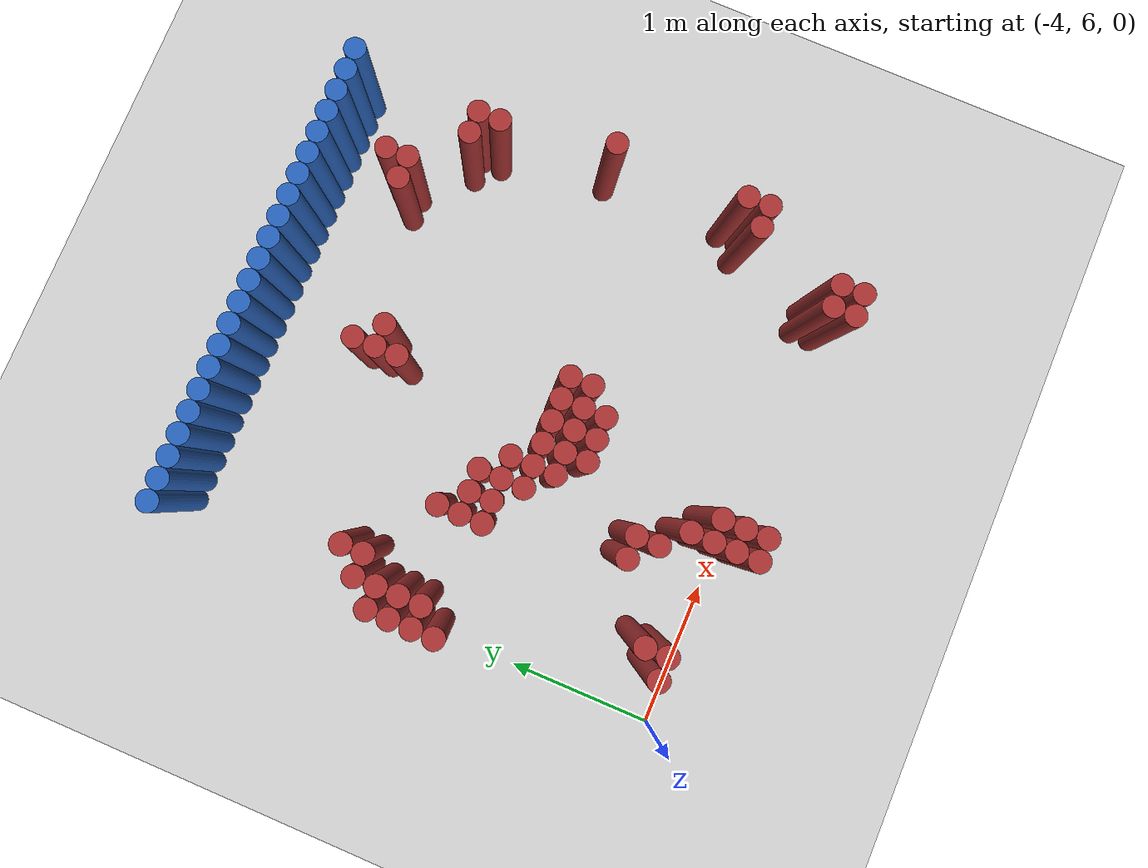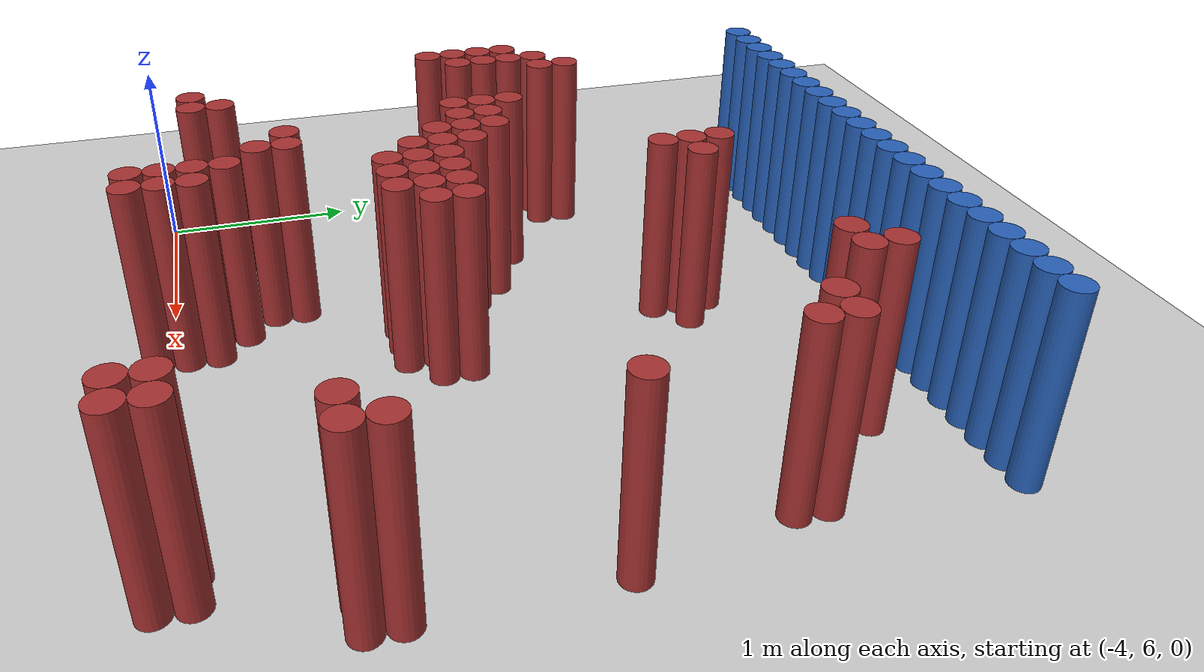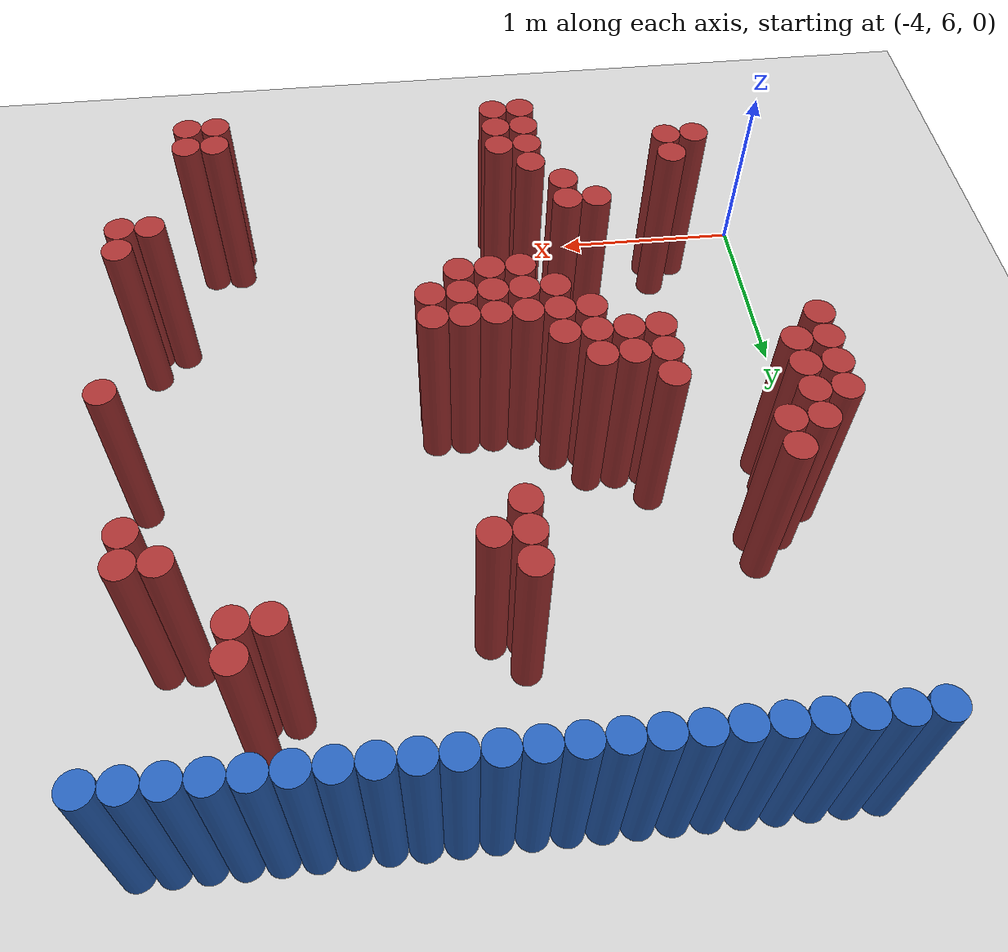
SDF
<sdf version="1.6">
 <world name="barn_world">
  <model name="ground_plane">
   <static>1</static>
   <link name="link">
    <collision name="collision">
     <geometry><plane><normal>0 0 1</normal><size>100 100</size></plane></geometry>
    </collision>
    <visual name="visual">
     <geometry><plane><normal>0 0 1</normal><size>100 100</size></plane></geometry>
     <material>
      <script><uri>file://media/materials/scripts/gazebo.material</uri><name>Gazebo/Grey</name></script>
     </material>
    </visual>
   </link>
  </model>
  <model name="unit_cylinder_196">
   <static>1</static>
   <pose>-3.9000 7.5750 0.5 0 0 0</pose>
   <link name="link">
    <collision name="collision">
     <geometry><cylinder><radius>0.075</radius><length>1</length></cylinder></geometry>
    </collision>
    <visual name="visual">
     <geometry><cylinder><radius>0.075</radius><length>1</length></cylinder></geometry>
     <material><ambient>0.648 0.192 0.192 1</ambient><diffuse>0.648 0.192 0.192 1</diffuse></material>
    </visual>
   </link>
  </model>
  <model name="unit_cylinder_197">
   <static>1</static>
   <pose>-3.9000 7.7250 0.5 0 0 0</pose>
   <link name="link">
    <collision name="collision">
     <geometry><cylinder><radius>0.075</radius><length>1</length></cylinder></geometry>
    </collision>
    <visual name="visual">
     <geometry><cylinder><radius>0.075</radius><length>1</length></cylinder></geometry>
     <material><ambient>0.648 0.192 0.192 1</ambient><diffuse>0.648 0.192 0.192 1</diffuse></material>
    </visual>
   </link>
  </model>
  <model name="unit_cylinder_198">
   <static>1</static>
   <pose>-3.9000 7.8750 0.5 0 0 0</pose>
   <link name="link">
    <collision name="collision">
     <geometry><cylinder><radius>0.075</radius><length>1</length></cylinder></geometry>
    </collision>
    <visual name="visual">
     <geometry><cylinder><radius>0.075</radius><length>1</length></cylinder></geometry>
     <material><ambient>0.648 0.192 0.192 1</ambient><diffuse>0.648 0.192 0.192 1</diffuse></material>
    </visual>
   </link>
  </model>
  <model name="unit_cylinder_199">
   <static>1</static>
   <pose>-3.9000 8.0250 0.5 0 0 0</pose>
   <link name="link">
    <collision name="collision">
     <geometry><cylinder><radius>0.075</radius><length>1</length></cylinder></geometry>
    </collision>
    <visual name="visual">
     <geometry><cylinder><radius>0.075</radius><length>1</length></cylinder></geometry>
     <material><ambient>0.648 0.192 0.192 1</ambient><diffuse>0.648 0.192 0.192 1</diffuse></material>
    </visual>
   </link>
  </model>
  <model name="unit_cylinder_200">
   <static>1</static>
   <pose>-3.7500 7.7250 0.5 0 0 0</pose>
   <link name="link">
    <collision name="collision">
     <geometry><cylinder><radius>0.075</radius><length>1</length></cylinder></geometry>
    </collision>
    <visual name="visual">
     <geometry><cylinder><radius>0.075</radius><length>1</length></cylinder></geometry>
     <material><ambient>0.648 0.192 0.192 1</ambient><diffuse>0.648 0.192 0.192 1</diffuse></material>
    </visual>
   </link>
  </model>
  <model name="unit_cylinder_201">
   <static>1</static>
   <pose>-3.7500 7.8750 0.5 0 0 0</pose>
   <link name="link">
    <collision name="collision">
     <geometry><cylinder><radius>0.075</radius><length>1</length></cylinder></geometry>
    </collision>
    <visual name="visual">
     <geometry><cylinder><radius>0.075</radius><length>1</length></cylinder></geometry>
     <material><ambient>0.648 0.192 0.192 1</ambient><diffuse>0.648 0.192 0.192 1</diffuse></material>
    </visual>
   </link>
  </model>
  <model name="unit_cylinder_202">
   <static>1</static>
   <pose>-3.7500 8.0250 0.5 0 0 0</pose>
   <link name="link">
    <collision name="collision">
     <geometry><cylinder><radius>0.075</radius><length>1</length></cylinder></geometry>
    </collision>
    <visual name="visual">
     <geometry><cylinder><radius>0.075</radius><length>1</length></cylinder></geometry>
     <material><ambient>0.648 0.192 0.192 1</ambient><diffuse>0.648 0.192 0.192 1</diffuse></material>
    </visual>
   </link>
  </model>
  <model name="unit_cylinder_203">
   <static>1</static>
   <pose>-3.7500 8.1750 0.5 0 0 0</pose>
   <link name="link">
    <collision name="collision">
     <geometry><cylinder><radius>0.075</radius><length>1</length></cylinder></geometry>
    </collision>
    <visual name="visual">
     <geometry><cylinder><radius>0.075</radius><length>1</length></cylinder></geometry>
     <material><ambient>0.648 0.192 0.192 1</ambient><diffuse>0.648 0.192 0.192 1</diffuse></material>
    </visual>
   </link>
  </model>
  <model name="unit_cylinder_204">
   <static>1</static>
   <pose>-3.6000 6.2250 0.5 0 0 0</pose>
   <link name="link">
    <collision name="collision">
     <geometry><cylinder><radius>0.075</radius><length>1</length></cylinder></geometry>
    </collision>
    <visual name="visual">
     <geometry><cylinder><radius>0.075</radius><length>1</length></cylinder></geometry>
     <material><ambient>0.648 0.192 0.192 1</ambient><diffuse>0.648 0.192 0.192 1</diffuse></material>
    </visual>
   </link>
  </model>
  <model name="unit_cylinder_205">
   <static>1</static>
   <pose>-3.6000 8.1750 0.5 0 0 0</pose>
   <link name="link">
    <collision name="collision">
     <geometry><cylinder><radius>0.075</radius><length>1</length></cylinder></geometry>
    </collision>
    <visual name="visual">
     <geometry><cylinder><radius>0.075</radius><length>1</length></cylinder></geometry>
     <material><ambient>0.648 0.192 0.192 1</ambient><diffuse>0.648 0.192 0.192 1</diffuse></material>
    </visual>
   </link>
  </model>
  <model name="unit_cylinder_206">
   <static>1</static>
   <pose>-3.6000 8.3250 0.5 0 0 0</pose>
   <link name="link">
    <collision name="collision">
     <geometry><cylinder><radius>0.075</radius><length>1</length></cylinder></geometry>
    </collision>
    <visual name="visual">
     <geometry><cylinder><radius>0.075</radius><length>1</length></cylinder></geometry>
     <material><ambient>0.648 0.192 0.192 1</ambient><diffuse>0.648 0.192 0.192 1</diffuse></material>
    </visual>
   </link>
  </model>
  <model name="unit_cylinder_207">
   <static>1</static>
   <pose>-3.4500 6.2250 0.5 0 0 0</pose>
   <link name="link">
    <collision name="collision">
     <geometry><cylinder><radius>0.075</radius><length>1</length></cylinder></geometry>
    </collision>
    <visual name="visual">
     <geometry><cylinder><radius>0.075</radius><length>1</length></cylinder></geometry>
     <material><ambient>0.648 0.192 0.192 1</ambient><diffuse>0.648 0.192 0.192 1</diffuse></material>
    </visual>
   </link>
  </model>
  <model name="unit_cylinder_208">
   <static>1</static>
   <pose>-3.4500 6.3750 0.5 0 0 0</pose>
   <link name="link">
    <collision name="collision">
     <geometry><cylinder><radius>0.075</radius><length>1</length></cylinder></geometry>
    </collision>
    <visual name="visual">
     <geometry><cylinder><radius>0.075</radius><length>1</length></cylinder></geometry>
     <material><ambient>0.648 0.192 0.192 1</ambient><diffuse>0.648 0.192 0.192 1</diffuse></material>
    </visual>
   </link>
  </model>
  <model name="unit_cylinder_209">
   <static>1</static>
   <pose>-3.1500 7.5750 0.5 0 0 0</pose>
   <link name="link">
    <collision name="collision">
     <geometry><cylinder><radius>0.075</radius><length>1</length></cylinder></geometry>
    </collision>
    <visual name="visual">
     <geometry><cylinder><radius>0.075</radius><length>1</length></cylinder></geometry>
     <material><ambient>0.648 0.192 0.192 1</ambient><diffuse>0.648 0.192 0.192 1</diffuse></material>
    </visual>
   </link>
  </model>
  <model name="unit_cylinder_210">
   <static>1</static>
   <pose>-3.1500 7.7250 0.5 0 0 0</pose>
   <link name="link">
    <collision name="collision">
     <geometry><cylinder><radius>0.075</radius><length>1</length></cylinder></geometry>
    </collision>
    <visual name="visual">
     <geometry><cylinder><radius>0.075</radius><length>1</length></cylinder></geometry>
     <material><ambient>0.648 0.192 0.192 1</ambient><diffuse>0.648 0.192 0.192 1</diffuse></material>
    </visual>
   </link>
  </model>
  <model name="unit_cylinder_211">
   <static>1</static>
   <pose>-3.1500 7.8750 0.5 0 0 0</pose>
   <link name="link">
    <collision name="collision">
     <geometry><cylinder><radius>0.075</radius><length>1</length></cylinder></geometry>
    </collision>
    <visual name="visual">
     <geometry><cylinder><radius>0.075</radius><length>1</length></cylinder></geometry>
     <material><ambient>0.648 0.192 0.192 1</ambient><diffuse>0.648 0.192 0.192 1</diffuse></material>
    </visual>
   </link>
  </model>
  <model name="unit_cylinder_213">
   <static>1</static>
   <pose>-3.0000 6.6750 0.5 0 0 0</pose>
   <link name="link">
    <collision name="collision">
     <geometry><cylinder><radius>0.075</radius><length>1</length></cylinder></geometry>
    </collision>
    <visual name="visual">
     <geometry><cylinder><radius>0.075</radius><length>1</length></cylinder></geometry>
     <material><ambient>0.648 0.192 0.192 1</ambient><diffuse>0.648 0.192 0.192 1</diffuse></material>
    </visual>
   </link>
  </model>
  <model name="unit_cylinder_214">
   <static>1</static>
   <pose>-3.0000 7.5750 0.5 0 0 0</pose>
   <link name="link">
    <collision name="collision">
     <geometry><cylinder><radius>0.075</radius><length>1</length></cylinder></geometry>
    </collision>
    <visual name="visual">
     <geometry><cylinder><radius>0.075</radius><length>1</length></cylinder></geometry>
     <material><ambient>0.648 0.192 0.192 1</ambient><diffuse>0.648 0.192 0.192 1</diffuse></material>
    </visual>
   </link>
  </model>
  <model name="unit_cylinder_215">
   <static>1</static>
   <pose>-3.0000 7.7250 0.5 0 0 0</pose>
   <link name="link">
    <collision name="collision">
     <geometry><cylinder><radius>0.075</radius><length>1</length></cylinder></geometry>
    </collision>
    <visual name="visual">
     <geometry><cylinder><radius>0.075</radius><length>1</length></cylinder></geometry>
     <material><ambient>0.648 0.192 0.192 1</ambient><diffuse>0.648 0.192 0.192 1</diffuse></material>
    </visual>
   </link>
  </model>
  <model name="unit_cylinder_218">
   <static>1</static>
   <pose>-2.8500 6.5250 0.5 0 0 0</pose>
   <link name="link">
    <collision name="collision">
     <geometry><cylinder><radius>0.075</radius><length>1</length></cylinder></geometry>
    </collision>
    <visual name="visual">
     <geometry><cylinder><radius>0.075</radius><length>1</length></cylinder></geometry>
     <material><ambient>0.648 0.192 0.192 1</ambient><diffuse>0.648 0.192 0.192 1</diffuse></material>
    </visual>
   </link>
  </model>
  <model name="unit_cylinder_219">
   <static>1</static>
   <pose>-2.8500 6.6750 0.5 0 0 0</pose>
   <link name="link">
    <collision name="collision">
     <geometry><cylinder><radius>0.075</radius><length>1</length></cylinder></geometry>
    </collision>
    <visual name="visual">
     <geometry><cylinder><radius>0.075</radius><length>1</length></cylinder></geometry>
     <material><ambient>0.648 0.192 0.192 1</ambient><diffuse>0.648 0.192 0.192 1</diffuse></material>
    </visual>
   </link>
  </model>
  <model name="unit_cylinder_220">
   <static>1</static>
   <pose>-2.8500 7.4250 0.5 0 0 0</pose>
   <link name="link">
    <collision name="collision">
     <geometry><cylinder><radius>0.075</radius><length>1</length></cylinder></geometry>
    </collision>
    <visual name="visual">
     <geometry><cylinder><radius>0.075</radius><length>1</length></cylinder></geometry>
     <material><ambient>0.648 0.192 0.192 1</ambient><diffuse>0.648 0.192 0.192 1</diffuse></material>
    </visual>
   </link>
  </model>
  <model name="unit_cylinder_221">
   <static>1</static>
   <pose>-2.8500 7.5750 0.5 0 0 0</pose>
   <link name="link">
    <collision name="collision">
     <geometry><cylinder><radius>0.075</radius><length>1</length></cylinder></geometry>
    </collision>
    <visual name="visual">
     <geometry><cylinder><radius>0.075</radius><length>1</length></cylinder></geometry>
     <material><ambient>0.648 0.192 0.192 1</ambient><diffuse>0.648 0.192 0.192 1</diffuse></material>
    </visual>
   </link>
  </model>
  <model name="unit_cylinder_222">
   <static>1</static>
   <pose>-2.8500 7.7250 0.5 0 0 0</pose>
   <link name="link">
    <collision name="collision">
     <geometry><cylinder><radius>0.075</radius><length>1</length></cylinder></geometry>
    </collision>
    <visual name="visual">
     <geometry><cylinder><radius>0.075</radius><length>1</length></cylinder></geometry>
     <material><ambient>0.648 0.192 0.192 1</ambient><diffuse>0.648 0.192 0.192 1</diffuse></material>
    </visual>
   </link>
  </model>
  <model name="unit_cylinder_224">
   <static>1</static>
   <pose>-2.7000 5.9250 0.5 0 0 0</pose>
   <link name="link">
    <collision name="collision">
     <geometry><cylinder><radius>0.075</radius><length>1</length></cylinder></geometry>
    </collision>
    <visual name="visual">
     <geometry><cylinder><radius>0.075</radius><length>1</length></cylinder></geometry>
     <material><ambient>0.648 0.192 0.192 1</ambient><diffuse>0.648 0.192 0.192 1</diffuse></material>
    </visual>
   </link>
  </model>
  <model name="unit_cylinder_225">
   <static>1</static>
   <pose>-2.7000 6.0750 0.5 0 0 0</pose>
   <link name="link">
    <collision name="collision">
     <geometry><cylinder><radius>0.075</radius><length>1</length></cylinder></geometry>
    </collision>
    <visual name="visual">
     <geometry><cylinder><radius>0.075</radius><length>1</length></cylinder></geometry>
     <material><ambient>0.648 0.192 0.192 1</ambient><diffuse>0.648 0.192 0.192 1</diffuse></material>
    </visual>
   </link>
  </model>
  <model name="unit_cylinder_226">
   <static>1</static>
   <pose>-2.7000 6.2250 0.5 0 0 0</pose>
   <link name="link">
    <collision name="collision">
     <geometry><cylinder><radius>0.075</radius><length>1</length></cylinder></geometry>
    </collision>
    <visual name="visual">
     <geometry><cylinder><radius>0.075</radius><length>1</length></cylinder></geometry>
     <material><ambient>0.648 0.192 0.192 1</ambient><diffuse>0.648 0.192 0.192 1</diffuse></material>
    </visual>
   </link>
  </model>
  <model name="unit_cylinder_227">
   <static>1</static>
   <pose>-2.7000 6.3750 0.5 0 0 0</pose>
   <link name="link">
    <collision name="collision">
     <geometry><cylinder><radius>0.075</radius><length>1</length></cylinder></geometry>
    </collision>
    <visual name="visual">
     <geometry><cylinder><radius>0.075</radius><length>1</length></cylinder></geometry>
     <material><ambient>0.648 0.192 0.192 1</ambient><diffuse>0.648 0.192 0.192 1</diffuse></material>
    </visual>
   </link>
  </model>
  <model name="unit_cylinder_228">
   <static>1</static>
   <pose>-2.7000 7.2750 0.5 0 0 0</pose>
   <link name="link">
    <collision name="collision">
     <geometry><cylinder><radius>0.075</radius><length>1</length></cylinder></geometry>
    </collision>
    <visual name="visual">
     <geometry><cylinder><radius>0.075</radius><length>1</length></cylinder></geometry>
     <material><ambient>0.648 0.192 0.192 1</ambient><diffuse>0.648 0.192 0.192 1</diffuse></material>
    </visual>
   </link>
  </model>
  <model name="unit_cylinder_229">
   <static>1</static>
   <pose>-2.7000 7.4250 0.5 0 0 0</pose>
   <link name="link">
    <collision name="collision">
     <geometry><cylinder><radius>0.075</radius><length>1</length></cylinder></geometry>
    </collision>
    <visual name="visual">
     <geometry><cylinder><radius>0.075</radius><length>1</length></cylinder></geometry>
     <material><ambient>0.648 0.192 0.192 1</ambient><diffuse>0.648 0.192 0.192 1</diffuse></material>
    </visual>
   </link>
  </model>
  <model name="unit_cylinder_230">
   <static>1</static>
   <pose>-2.7000 7.5750 0.5 0 0 0</pose>
   <link name="link">
    <collision name="collision">
     <geometry><cylinder><radius>0.075</radius><length>1</length></cylinder></geometry>
    </collision>
    <visual name="visual">
     <geometry><cylinder><radius>0.075</radius><length>1</length></cylinder></geometry>
     <material><ambient>0.648 0.192 0.192 1</ambient><diffuse>0.648 0.192 0.192 1</diffuse></material>
    </visual>
   </link>
  </model>
  <model name="unit_cylinder_231">
   <static>1</static>
   <pose>-2.5500 5.9250 0.5 0 0 0</pose>
   <link name="link">
    <collision name="collision">
     <geometry><cylinder><radius>0.075</radius><length>1</length></cylinder></geometry>
    </collision>
    <visual name="visual">
     <geometry><cylinder><radius>0.075</radius><length>1</length></cylinder></geometry>
     <material><ambient>0.648 0.192 0.192 1</ambient><diffuse>0.648 0.192 0.192 1</diffuse></material>
    </visual>
   </link>
  </model>
  <model name="unit_cylinder_232">
   <static>1</static>
   <pose>-2.5500 6.0750 0.5 0 0 0</pose>
   <link name="link">
    <collision name="collision">
     <geometry><cylinder><radius>0.075</radius><length>1</length></cylinder></geometry>
    </collision>
    <visual name="visual">
     <geometry><cylinder><radius>0.075</radius><length>1</length></cylinder></geometry>
     <material><ambient>0.648 0.192 0.192 1</ambient><diffuse>0.648 0.192 0.192 1</diffuse></material>
    </visual>
   </link>
  </model>
  <model name="unit_cylinder_233">
   <static>1</static>
   <pose>-2.5500 6.2250 0.5 0 0 0</pose>
   <link name="link">
    <collision name="collision">
     <geometry><cylinder><radius>0.075</radius><length>1</length></cylinder></geometry>
    </collision>
    <visual name="visual">
     <geometry><cylinder><radius>0.075</radius><length>1</length></cylinder></geometry>
     <material><ambient>0.648 0.192 0.192 1</ambient><diffuse>0.648 0.192 0.192 1</diffuse></material>
    </visual>
   </link>
  </model>
  <model name="unit_cylinder_234">
   <static>1</static>
   <pose>-2.5500 7.1250 0.5 0 0 0</pose>
   <link name="link">
    <collision name="collision">
     <geometry><cylinder><radius>0.075</radius><length>1</length></cylinder></geometry>
    </collision>
    <visual name="visual">
     <geometry><cylinder><radius>0.075</radius><length>1</length></cylinder></geometry>
     <material><ambient>0.648 0.192 0.192 1</ambient><diffuse>0.648 0.192 0.192 1</diffuse></material>
    </visual>
   </link>
  </model>
  <model name="unit_cylinder_235">
   <static>1</static>
   <pose>-2.5500 7.2750 0.5 0 0 0</pose>
   <link name="link">
    <collision name="collision">
     <geometry><cylinder><radius>0.075</radius><length>1</length></cylinder></geometry>
    </collision>
    <visual name="visual">
     <geometry><cylinder><radius>0.075</radius><length>1</length></cylinder></geometry>
     <material><ambient>0.648 0.192 0.192 1</ambient><diffuse>0.648 0.192 0.192 1</diffuse></material>
    </visual>
   </link>
  </model>
  <model name="unit_cylinder_236">
   <static>1</static>
   <pose>-2.5500 7.4250 0.5 0 0 0</pose>
   <link name="link">
    <collision name="collision">
     <geometry><cylinder><radius>0.075</radius><length>1</length></cylinder></geometry>
    </collision>
    <visual name="visual">
     <geometry><cylinder><radius>0.075</radius><length>1</length></cylinder></geometry>
     <material><ambient>0.648 0.192 0.192 1</ambient><diffuse>0.648 0.192 0.192 1</diffuse></material>
    </visual>
   </link>
  </model>
  <model name="unit_cylinder_237">
   <static>1</static>
   <pose>-2.4000 7.1250 0.5 0 0 0</pose>
   <link name="link">
    <collision name="collision">
     <geometry><cylinder><radius>0.075</radius><length>1</length></cylinder></geometry>
    </collision>
    <visual name="visual">
     <geometry><cylinder><radius>0.075</radius><length>1</length></cylinder></geometry>
     <material><ambient>0.648 0.192 0.192 1</ambient><diffuse>0.648 0.192 0.192 1</diffuse></material>
    </visual>
   </link>
  </model>
  <model name="unit_cylinder_238">
   <static>1</static>
   <pose>-2.4000 7.2750 0.5 0 0 0</pose>
   <link name="link">
    <collision name="collision">
     <geometry><cylinder><radius>0.075</radius><length>1</length></cylinder></geometry>
    </collision>
    <visual name="visual">
     <geometry><cylinder><radius>0.075</radius><length>1</length></cylinder></geometry>
     <material><ambient>0.648 0.192 0.192 1</ambient><diffuse>0.648 0.192 0.192 1</diffuse></material>
    </visual>
   </link>
  </model>
  <model name="unit_cylinder_239">
   <static>1</static>
   <pose>-2.4000 7.4250 0.5 0 0 0</pose>
   <link name="link">
    <collision name="collision">
     <geometry><cylinder><radius>0.075</radius><length>1</length></cylinder></geometry>
    </collision>
    <visual name="visual">
     <geometry><cylinder><radius>0.075</radius><length>1</length></cylinder></geometry>
     <material><ambient>0.648 0.192 0.192 1</ambient><diffuse>0.648 0.192 0.192 1</diffuse></material>
    </visual>
   </link>
  </model>
  <model name="unit_cylinder_240">
   <static>1</static>
   <pose>-2.4000 8.4750 0.5 0 0 0</pose>
   <link name="link">
    <collision name="collision">
     <geometry><cylinder><radius>0.075</radius><length>1</length></cylinder></geometry>
    </collision>
    <visual name="visual">
     <geometry><cylinder><radius>0.075</radius><length>1</length></cylinder></geometry>
     <material><ambient>0.648 0.192 0.192 1</ambient><diffuse>0.648 0.192 0.192 1</diffuse></material>
    </visual>
   </link>
  </model>
  <model name="unit_cylinder_241">
   <static>1</static>
   <pose>-2.4000 8.6250 0.5 0 0 0</pose>
   <link name="link">
    <collision name="collision">
     <geometry><cylinder><radius>0.075</radius><length>1</length></cylinder></geometry>
    </collision>
    <visual name="visual">
     <geometry><cylinder><radius>0.075</radius><length>1</length></cylinder></geometry>
     <material><ambient>0.648 0.192 0.192 1</ambient><diffuse>0.648 0.192 0.192 1</diffuse></material>
    </visual>
   </link>
  </model>
  <model name="unit_cylinder_242">
   <static>1</static>
   <pose>-2.4000 8.7750 0.5 0 0 0</pose>
   <link name="link">
    <collision name="collision">
     <geometry><cylinder><radius>0.075</radius><length>1</length></cylinder></geometry>
    </collision>
    <visual name="visual">
     <geometry><cylinder><radius>0.075</radius><length>1</length></cylinder></geometry>
     <material><ambient>0.648 0.192 0.192 1</ambient><diffuse>0.648 0.192 0.192 1</diffuse></material>
    </visual>
   </link>
  </model>
  <model name="unit_cylinder_243">
   <static>1</static>
   <pose>-2.2500 7.1250 0.5 0 0 0</pose>
   <link name="link">
    <collision name="collision">
     <geometry><cylinder><radius>0.075</radius><length>1</length></cylinder></geometry>
    </collision>
    <visual name="visual">
     <geometry><cylinder><radius>0.075</radius><length>1</length></cylinder></geometry>
     <material><ambient>0.648 0.192 0.192 1</ambient><diffuse>0.648 0.192 0.192 1</diffuse></material>
    </visual>
   </link>
  </model>
  <model name="unit_cylinder_244">
   <static>1</static>
   <pose>-2.2500 7.2750 0.5 0 0 0</pose>
   <link name="link">
    <collision name="collision">
     <geometry><cylinder><radius>0.075</radius><length>1</length></cylinder></geometry>
    </collision>
    <visual name="visual">
     <geometry><cylinder><radius>0.075</radius><length>1</length></cylinder></geometry>
     <material><ambient>0.648 0.192 0.192 1</ambient><diffuse>0.648 0.192 0.192 1</diffuse></material>
    </visual>
   </link>
  </model>
  <model name="unit_cylinder_245">
   <static>1</static>
   <pose>-2.2500 7.4250 0.5 0 0 0</pose>
   <link name="link">
    <collision name="collision">
     <geometry><cylinder><radius>0.075</radius><length>1</length></cylinder></geometry>
    </collision>
    <visual name="visual">
     <geometry><cylinder><radius>0.075</radius><length>1</length></cylinder></geometry>
     <material><ambient>0.648 0.192 0.192 1</ambient><diffuse>0.648 0.192 0.192 1</diffuse></material>
    </visual>
   </link>
  </model>
  <model name="unit_cylinder_246">
   <static>1</static>
   <pose>-2.2500 8.6250 0.5 0 0 0</pose>
   <link name="link">
    <collision name="collision">
     <geometry><cylinder><radius>0.075</radius><length>1</length></cylinder></geometry>
    </collision>
    <visual name="visual">
     <geometry><cylinder><radius>0.075</radius><length>1</length></cylinder></geometry>
     <material><ambient>0.648 0.192 0.192 1</ambient><diffuse>0.648 0.192 0.192 1</diffuse></material>
    </visual>
   </link>
  </model>
  <model name="unit_cylinder_247">
   <static>1</static>
   <pose>-2.1000 7.2750 0.5 0 0 0</pose>
   <link name="link">
    <collision name="collision">
     <geometry><cylinder><radius>0.075</radius><length>1</length></cylinder></geometry>
    </collision>
    <visual name="visual">
     <geometry><cylinder><radius>0.075</radius><length>1</length></cylinder></geometry>
     <material><ambient>0.648 0.192 0.192 1</ambient><diffuse>0.648 0.192 0.192 1</diffuse></material>
    </visual>
   </link>
  </model>
  <model name="unit_cylinder_248">
   <static>1</static>
   <pose>-2.1000 7.4250 0.5 0 0 0</pose>
   <link name="link">
    <collision name="collision">
     <geometry><cylinder><radius>0.075</radius><length>1</length></cylinder></geometry>
    </collision>
    <visual name="visual">
     <geometry><cylinder><radius>0.075</radius><length>1</length></cylinder></geometry>
     <material><ambient>0.648 0.192 0.192 1</ambient><diffuse>0.648 0.192 0.192 1</diffuse></material>
    </visual>
   </link>
  </model>
  <model name="unit_cylinder_258">
   <static>1</static>
   <pose>-1.3500 8.9250 0.5 0 0 0</pose>
   <link name="link">
    <collision name="collision">
     <geometry><cylinder><radius>0.075</radius><length>1</length></cylinder></geometry>
    </collision>
    <visual name="visual">
     <geometry><cylinder><radius>0.075</radius><length>1</length></cylinder></geometry>
     <material><ambient>0.648 0.192 0.192 1</ambient><diffuse>0.648 0.192 0.192 1</diffuse></material>
    </visual>
   </link>
  </model>
  <model name="unit_cylinder_259">
   <static>1</static>
   <pose>-1.2000 8.9250 0.5 0 0 0</pose>
   <link name="link">
    <collision name="collision">
     <geometry><cylinder><radius>0.075</radius><length>1</length></cylinder></geometry>
    </collision>
    <visual name="visual">
     <geometry><cylinder><radius>0.075</radius><length>1</length></cylinder></geometry>
     <material><ambient>0.648 0.192 0.192 1</ambient><diffuse>0.648 0.192 0.192 1</diffuse></material>
    </visual>
   </link>
  </model>
  <model name="unit_cylinder_260">
   <static>1</static>
   <pose>-1.2000 9.0750 0.5 0 0 0</pose>
   <link name="link">
    <collision name="collision">
     <geometry><cylinder><radius>0.075</radius><length>1</length></cylinder></geometry>
    </collision>
    <visual name="visual">
     <geometry><cylinder><radius>0.075</radius><length>1</length></cylinder></geometry>
     <material><ambient>0.648 0.192 0.192 1</ambient><diffuse>0.648 0.192 0.192 1</diffuse></material>
    </visual>
   </link>
  </model>
  <model name="unit_cylinder_261">
   <static>1</static>
   <pose>-1.0500 5.9250 0.5 0 0 0</pose>
   <link name="link">
    <collision name="collision">
     <geometry><cylinder><radius>0.075</radius><length>1</length></cylinder></geometry>
    </collision>
    <visual name="visual">
     <geometry><cylinder><radius>0.075</radius><length>1</length></cylinder></geometry>
     <material><ambient>0.648 0.192 0.192 1</ambient><diffuse>0.648 0.192 0.192 1</diffuse></material>
    </visual>
   </link>
  </model>
  <model name="unit_cylinder_262">
   <static>1</static>
   <pose>-1.0500 6.0750 0.5 0 0 0</pose>
   <link name="link">
    <collision name="collision">
     <geometry><cylinder><radius>0.075</radius><length>1</length></cylinder></geometry>
    </collision>
    <visual name="visual">
     <geometry><cylinder><radius>0.075</radius><length>1</length></cylinder></geometry>
     <material><ambient>0.648 0.192 0.192 1</ambient><diffuse>0.648 0.192 0.192 1</diffuse></material>
    </visual>
   </link>
  </model>
  <model name="unit_cylinder_263">
   <static>1</static>
   <pose>-0.9000 5.9250 0.5 0 0 0</pose>
   <link name="link">
    <collision name="collision">
     <geometry><cylinder><radius>0.075</radius><length>1</length></cylinder></geometry>
    </collision>
    <visual name="visual">
     <geometry><cylinder><radius>0.075</radius><length>1</length></cylinder></geometry>
     <material><ambient>0.648 0.192 0.192 1</ambient><diffuse>0.648 0.192 0.192 1</diffuse></material>
    </visual>
   </link>
  </model>
  <model name="unit_cylinder_264">
   <static>1</static>
   <pose>-0.9000 6.0750 0.5 0 0 0</pose>
   <link name="link">
    <collision name="collision">
     <geometry><cylinder><radius>0.075</radius><length>1</length></cylinder></geometry>
    </collision>
    <visual name="visual">
     <geometry><cylinder><radius>0.075</radius><length>1</length></cylinder></geometry>
     <material><ambient>0.648 0.192 0.192 1</ambient><diffuse>0.648 0.192 0.192 1</diffuse></material>
    </visual>
   </link>
  </model>
  <model name="unit_cylinder_265">
   <static>1</static>
   <pose>-0.9000 8.6250 0.5 0 0 0</pose>
   <link name="link">
    <collision name="collision">
     <geometry><cylinder><radius>0.075</radius><length>1</length></cylinder></geometry>
    </collision>
    <visual name="visual">
     <geometry><cylinder><radius>0.075</radius><length>1</length></cylinder></geometry>
     <material><ambient>0.648 0.192 0.192 1</ambient><diffuse>0.648 0.192 0.192 1</diffuse></material>
    </visual>
   </link>
  </model>
  <model name="unit_cylinder_266">
   <static>1</static>
   <pose>-0.7500 6.6750 0.5 0 0 0</pose>
   <link name="link">
    <collision name="collision">
     <geometry><cylinder><radius>0.075</radius><length>1</length></cylinder></geometry>
    </collision>
    <visual name="visual">
     <geometry><cylinder><radius>0.075</radius><length>1</length></cylinder></geometry>
     <material><ambient>0.648 0.192 0.192 1</ambient><diffuse>0.648 0.192 0.192 1</diffuse></material>
    </visual>
   </link>
  </model>
  <model name="unit_cylinder_267">
   <static>1</static>
   <pose>-0.7500 8.4750 0.5 0 0 0</pose>
   <link name="link">
    <collision name="collision">
     <geometry><cylinder><radius>0.075</radius><length>1</length></cylinder></geometry>
    </collision>
    <visual name="visual">
     <geometry><cylinder><radius>0.075</radius><length>1</length></cylinder></geometry>
     <material><ambient>0.648 0.192 0.192 1</ambient><diffuse>0.648 0.192 0.192 1</diffuse></material>
    </visual>
   </link>
  </model>
  <model name="unit_cylinder_268">
   <static>1</static>
   <pose>-0.7500 8.6250 0.5 0 0 0</pose>
   <link name="link">
    <collision name="collision">
     <geometry><cylinder><radius>0.075</radius><length>1</length></cylinder></geometry>
    </collision>
    <visual name="visual">
     <geometry><cylinder><radius>0.075</radius><length>1</length></cylinder></geometry>
     <material><ambient>0.648 0.192 0.192 1</ambient><diffuse>0.648 0.192 0.192 1</diffuse></material>
    </visual>
   </link>
  </model>
  <model name="unit_cylinder_269">
   <static>1</static>
   <pose>-0.6000 6.6750 0.5 0 0 0</pose>
   <link name="link">
    <collision name="collision">
     <geometry><cylinder><radius>0.075</radius><length>1</length></cylinder></geometry>
    </collision>
    <visual name="visual">
     <geometry><cylinder><radius>0.075</radius><length>1</length></cylinder></geometry>
     <material><ambient>0.648 0.192 0.192 1</ambient><diffuse>0.648 0.192 0.192 1</diffuse></material>
    </visual>
   </link>
  </model>
  <model name="unit_cylinder_270">
   <static>1</static>
   <pose>-0.6000 6.8250 0.5 0 0 0</pose>
   <link name="link">
    <collision name="collision">
     <geometry><cylinder><radius>0.075</radius><length>1</length></cylinder></geometry>
    </collision>
    <visual name="visual">
     <geometry><cylinder><radius>0.075</radius><length>1</length></cylinder></geometry>
     <material><ambient>0.648 0.192 0.192 1</ambient><diffuse>0.648 0.192 0.192 1</diffuse></material>
    </visual>
   </link>
  </model>
  <model name="unit_cylinder_271">
   <static>1</static>
   <pose>-0.6000 7.7250 0.5 0 0 0</pose>
   <link name="link">
    <collision name="collision">
     <geometry><cylinder><radius>0.075</radius><length>1</length></cylinder></geometry>
    </collision>
    <visual name="visual">
     <geometry><cylinder><radius>0.075</radius><length>1</length></cylinder></geometry>
     <material><ambient>0.648 0.192 0.192 1</ambient><diffuse>0.648 0.192 0.192 1</diffuse></material>
    </visual>
   </link>
  </model>
  <model name="unit_cylinder_342">
   <static>1</static>
   <pose>-0.6750 9.5250 0.5 0 0 0</pose>
   <link name="link">
    <collision name="collision">
     <geometry><cylinder><radius>0.075</radius><length>1</length></cylinder></geometry>
    </collision>
    <visual name="visual">
     <geometry><cylinder><radius>0.075</radius><length>1</length></cylinder></geometry>
     <material><ambient>0.152 0.379 0.72 1</ambient><diffuse>0.152 0.379 0.72 1</diffuse></material>
    </visual>
   </link>
  </model>
  <model name="unit_cylinder_343">
   <static>1</static>
   <pose>-0.8250 9.5250 0.5 0 0 0</pose>
   <link name="link">
    <collision name="collision">
     <geometry><cylinder><radius>0.075</radius><length>1</length></cylinder></geometry>
    </collision>
    <visual name="visual">
     <geometry><cylinder><radius>0.075</radius><length>1</length></cylinder></geometry>
     <material><ambient>0.152 0.379 0.72 1</ambient><diffuse>0.152 0.379 0.72 1</diffuse></material>
    </visual>
   </link>
  </model>
  <model name="unit_cylinder_344">
   <static>1</static>
   <pose>-0.9750 9.5250 0.5 0 0 0</pose>
   <link name="link">
    <collision name="collision">
     <geometry><cylinder><radius>0.075</radius><length>1</length></cylinder></geometry>
    </collision>
    <visual name="visual">
     <geometry><cylinder><radius>0.075</radius><length>1</length></cylinder></geometry>
     <material><ambient>0.152 0.379 0.72 1</ambient><diffuse>0.152 0.379 0.72 1</diffuse></material>
    </visual>
   </link>
  </model>
  <model name="unit_cylinder_345">
   <static>1</static>
   <pose>-1.1250 9.5250 0.5 0 0 0</pose>
   <link name="link">
    <collision name="collision">
     <geometry><cylinder><radius>0.075</radius><length>1</length></cylinder></geometry>
    </collision>
    <visual name="visual">
     <geometry><cylinder><radius>0.075</radius><length>1</length></cylinder></geometry>
     <material><ambient>0.152 0.379 0.72 1</ambient><diffuse>0.152 0.379 0.72 1</diffuse></material>
    </visual>
   </link>
  </model>
  <model name="unit_cylinder_346">
   <static>1</static>
   <pose>-1.2750 9.5250 0.5 0 0 0</pose>
   <link name="link">
    <collision name="collision">
     <geometry><cylinder><radius>0.075</radius><length>1</length></cylinder></geometry>
    </collision>
    <visual name="visual">
     <geometry><cylinder><radius>0.075</radius><length>1</length></cylinder></geometry>
     <material><ambient>0.152 0.379 0.72 1</ambient><diffuse>0.152 0.379 0.72 1</diffuse></material>
    </visual>
   </link>
  </model>
  <model name="unit_cylinder_347">
   <static>1</static>
   <pose>-1.4250 9.5250 0.5 0 0 0</pose>
   <link name="link">
    <collision name="collision">
     <geometry><cylinder><radius>0.075</radius><length>1</length></cylinder></geometry>
    </collision>
    <visual name="visual">
     <geometry><cylinder><radius>0.075</radius><length>1</length></cylinder></geometry>
     <material><ambient>0.152 0.379 0.72 1</ambient><diffuse>0.152 0.379 0.72 1</diffuse></material>
    </visual>
   </link>
  </model>
  <model name="unit_cylinder_348">
   <static>1</static>
   <pose>-1.5750 9.5250 0.5 0 0 0</pose>
   <link name="link">
    <collision name="collision">
     <geometry><cylinder><radius>0.075</radius><length>1</length></cylinder></geometry>
    </collision>
    <visual name="visual">
     <geometry><cylinder><radius>0.075</radius><length>1</length></cylinder></geometry>
     <material><ambient>0.152 0.379 0.72 1</ambient><diffuse>0.152 0.379 0.72 1</diffuse></material>
    </visual>
   </link>
  </model>
  <model name="unit_cylinder_349">
   <static>1</static>
   <pose>-1.7250 9.5250 0.5 0 0 0</pose>
   <link name="link">
    <collision name="collision">
     <geometry><cylinder><radius>0.075</radius><length>1</length></cylinder></geometry>
    </collision>
    <visual name="visual">
     <geometry><cylinder><radius>0.075</radius><length>1</length></cylinder></geometry>
     <material><ambient>0.152 0.379 0.72 1</ambient><diffuse>0.152 0.379 0.72 1</diffuse></material>
    </visual>
   </link>
  </model>
  <model name="unit_cylinder_350">
   <static>1</static>
   <pose>-1.8750 9.5250 0.5 0 0 0</pose>
   <link name="link">
    <collision name="collision">
     <geometry><cylinder><radius>0.075</radius><length>1</length></cylinder></geometry>
    </collision>
    <visual name="visual">
     <geometry><cylinder><radius>0.075</radius><length>1</length></cylinder></geometry>
     <material><ambient>0.152 0.379 0.72 1</ambient><diffuse>0.152 0.379 0.72 1</diffuse></material>
    </visual>
   </link>
  </model>
  <model name="unit_cylinder_351">
   <static>1</static>
   <pose>-2.0250 9.5250 0.5 0 0 0</pose>
   <link name="link">
    <collision name="collision">
     <geometry><cylinder><radius>0.075</radius><length>1</length></cylinder></geometry>
    </collision>
    <visual name="visual">
     <geometry><cylinder><radius>0.075</radius><length>1</length></cylinder></geometry>
     <material><ambient>0.152 0.379 0.72 1</ambient><diffuse>0.152 0.379 0.72 1</diffuse></material>
    </visual>
   </link>
  </model>
  <model name="unit_cylinder_352">
   <static>1</static>
   <pose>-2.1750 9.5250 0.5 0 0 0</pose>
   <link name="link">
    <collision name="collision">
     <geometry><cylinder><radius>0.075</radius><length>1</length></cylinder></geometry>
    </collision>
    <visual name="visual">
     <geometry><cylinder><radius>0.075</radius><length>1</length></cylinder></geometry>
     <material><ambient>0.152 0.379 0.72 1</ambient><diffuse>0.152 0.379 0.72 1</diffuse></material>
    </visual>
   </link>
  </model>
  <model name="unit_cylinder_353">
   <static>1</static>
   <pose>-2.3250 9.5250 0.5 0 0 0</pose>
   <link name="link">
    <collision name="collision">
     <geometry><cylinder><radius>0.075</radius><length>1</length></cylinder></geometry>
    </collision>
    <visual name="visual">
     <geometry><cylinder><radius>0.075</radius><length>1</length></cylinder></geometry>
     <material><ambient>0.152 0.379 0.72 1</ambient><diffuse>0.152 0.379 0.72 1</diffuse></material>
    </visual>
   </link>
  </model>
  <model name="unit_cylinder_354">
   <static>1</static>
   <pose>-2.4750 9.5250 0.5 0 0 0</pose>
   <link name="link">
    <collision name="collision">
     <geometry><cylinder><radius>0.075</radius><length>1</length></cylinder></geometry>
    </collision>
    <visual name="visual">
     <geometry><cylinder><radius>0.075</radius><length>1</length></cylinder></geometry>
     <material><ambient>0.152 0.379 0.72 1</ambient><diffuse>0.152 0.379 0.72 1</diffuse></material>
    </visual>
   </link>
  </model>
  <model name="unit_cylinder_355">
   <static>1</static>
   <pose>-2.6250 9.5250 0.5 0 0 0</pose>
   <link name="link">
    <collision name="collision">
     <geometry><cylinder><radius>0.075</radius><length>1</length></cylinder></geometry>
    </collision>
    <visual name="visual">
     <geometry><cylinder><radius>0.075</radius><length>1</length></cylinder></geometry>
     <material><ambient>0.152 0.379 0.72 1</ambient><diffuse>0.152 0.379 0.72 1</diffuse></material>
    </visual>
   </link>
  </model>
  <model name="unit_cylinder_356">
   <static>1</static>
   <pose>-2.7750 9.5250 0.5 0 0 0</pose>
   <link name="link">
    <collision name="collision">
     <geometry><cylinder><radius>0.075</radius><length>1</length></cylinder></geometry>
    </collision>
    <visual name="visual">
     <geometry><cylinder><radius>0.075</radius><length>1</length></cylinder></geometry>
     <material><ambient>0.152 0.379 0.72 1</ambient><diffuse>0.152 0.379 0.72 1</diffuse></material>
    </visual>
   </link>
  </model>
  <model name="unit_cylinder_357">
   <static>1</static>
   <pose>-2.9250 9.5250 0.5 0 0 0</pose>
   <link name="link">
    <collision name="collision">
     <geometry><cylinder><radius>0.075</radius><length>1</length></cylinder></geometry>
    </collision>
    <visual name="visual">
     <geometry><cylinder><radius>0.075</radius><length>1</length></cylinder></geometry>
     <material><ambient>0.152 0.379 0.72 1</ambient><diffuse>0.152 0.379 0.72 1</diffuse></material>
    </visual>
   </link>
  </model>
  <model name="unit_cylinder_358">
   <static>1</static>
   <pose>-3.0750 9.5250 0.5 0 0 0</pose>
   <link name="link">
    <collision name="collision">
     <geometry><cylinder><radius>0.075</radius><length>1</length></cylinder></geometry>
    </collision>
    <visual name="visual">
     <geometry><cylinder><radius>0.075</radius><length>1</length></cylinder></geometry>
     <material><ambient>0.152 0.379 0.72 1</ambient><diffuse>0.152 0.379 0.72 1</diffuse></material>
    </visual>
   </link>
  </model>
  <model name="unit_cylinder_359">
   <static>1</static>
   <pose>-3.2250 9.5250 0.5 0 0 0</pose>
   <link name="link">
    <collision name="collision">
     <geometry><cylinder><radius>0.075</radius><length>1</length></cylinder></geometry>
    </collision>
    <visual name="visual">
     <geometry><cylinder><radius>0.075</radius><length>1</length></cylinder></geometry>
     <material><ambient>0.152 0.379 0.72 1</ambient><diffuse>0.152 0.379 0.72 1</diffuse></material>
    </visual>
   </link>
  </model>
  <model name="unit_cylinder_360">
   <static>1</static>
   <pose>-3.3750 9.5250 0.5 0 0 0</pose>
   <link name="link">
    <collision name="collision">
     <geometry><cylinder><radius>0.075</radius><length>1</length></cylinder></geometry>
    </collision>
    <visual name="visual">
     <geometry><cylinder><radius>0.075</radius><length>1</length></cylinder></geometry>
     <material><ambient>0.152 0.379 0.72 1</ambient><diffuse>0.152 0.379 0.72 1</diffuse></material>
    </visual>
   </link>
  </model>
  <model name="unit_cylinder_361">
   <static>1</static>
   <pose>-3.5250 9.5250 0.5 0 0 0</pose>
   <link name="link">
    <collision name="collision">
     <geometry><cylinder><radius>0.075</radius><length>1</length></cylinder></geometry>
    </collision>
    <visual name="visual">
     <geometry><cylinder><radius>0.075</radius><length>1</length></cylinder></geometry>
     <material><ambient>0.152 0.379 0.72 1</ambient><diffuse>0.152 0.379 0.72 1</diffuse></material>
    </visual>
   </link>
  </model>
  <model name="unit_cylinder_362">
   <static>1</static>
   <pose>-3.6750 9.5250 0.5 0 0 0</pose>
   <link name="link">
    <collision name="collision">
     <geometry><cylinder><radius>0.075</radius><length>1</length></cylinder></geometry>
    </collision>
    <visual name="visual">
     <geometry><cylinder><radius>0.075</radius><length>1</length></cylinder></geometry>
     <material><ambient>0.152 0.379 0.72 1</ambient><diffuse>0.152 0.379 0.72 1</diffuse></material>
    </visual>
   </link>
  </model>
  <model name="unit_cylinder_363">
   <static>1</static>
   <pose>-3.8250 9.5250 0.5 0 0 0</pose>
   <link name="link">
    <collision name="collision">
     <geometry><cylinder><radius>0.075</radius><length>1</length></cylinder></geometry>
    </collision>
    <visual name="visual">
     <geometry><cylinder><radius>0.075</radius><length>1</length></cylinder></geometry>
     <material><ambient>0.152 0.379 0.72 1</ambient><diffuse>0.152 0.379 0.72 1</diffuse></material>
    </visual>
   </link>
  </model>
 </world>
</sdf>
